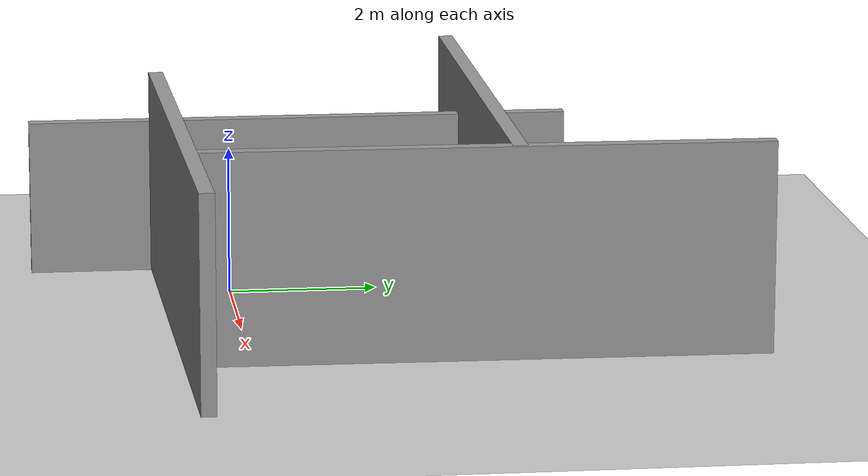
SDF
<sdf version="1.4">
 <world name="default">
  <light name="sun" type="directional">
   <pose>0 0 10 0 -0 0</pose>
   <diffuse>0.8 0.8 0.8 1</diffuse>
   <specular>0.2 0.2 0.2 1</specular>
   <attenuation>
    <range>1000</range>
    <constant>0.9</constant>
    <linear>0.01</linear>
    <quadratic>0.001</quadratic>
   </attenuation>
   <direction>-0.5 0.1 -0.9</direction>
  </light>
  <model name="ground_plane">
   <static>1</static>
   <link name="link">
    <collision name="collision">
     <geometry><plane><normal>0 0 1</normal><size>100 100</size></plane></geometry>
     <surface><friction><ode><mu>100</mu><mu2>50</mu2></ode></friction></surface>
    </collision>
    <visual name="visual">
     <cast_shadows>0</cast_shadows>
     <geometry><plane><normal>0 0 1</normal><size>100 100</size></plane></geometry>
     <material>
      <script><uri>file://media/materials/scripts/gazebo.material</uri><name>Gazebo/Grey</name></script>
     </material>
    </visual>
    <velocity_decay><linear>0</linear><angular>0</angular></velocity_decay>
   </link>
  </model>
  <physics type="ode">
   <max_step_size>0.001</max_step_size>
   <real_time_factor>1</real_time_factor>
   <real_time_update_rate>1000</real_time_update_rate>
   <gravity>0 0 -9.8</gravity>
  </physics>
  <scene><ambient>0.4 0.4 0.4 1</ambient><background>0.7 0.7 0.7 1</background><shadows>1</shadows></scene>
  <spherical_coordinates>
   <surface_model>EARTH_WGS84</surface_model>
   <latitude_deg>0</latitude_deg>
   <longitude_deg>0</longitude_deg>
   <elevation>0</elevation>
   <heading_deg>0</heading_deg>
  </spherical_coordinates>
  <model name="grey_wall">
   <static>1</static>
   <link name="link">
    <pose>0 0 1.4 0 -0 0</pose>
    <collision name="collision"><geometry><box><size>7.5 0.2 2.8</size></box></geometry></collision>
    <visual name="visual">
     <cast_shadows>0</cast_shadows>
     <geometry><box><size>7.5 0.2 2.8</size></box></geometry>
     <material>
      <script>
       <uri>model://grey_wall/materials/scripts_the_last_supper</uri>
       <uri>model://grey_wall/materials/textures</uri>
       <name>vrc/grey_wall_The_Last_Supper</name>
      </script>
     </material>
    </visual>
    <velocity_decay><linear>0</linear><angular>0</angular></velocity_decay>
   </link>
   <pose>-1.50089 1.08069 -0.690167 0 -0 1.56948</pose>
  </model>
  <model name="grey_wall_0">
   <static>1</static>
   <link name="link">
    <pose>0 0 1.4 0 -0 0</pose>
    <collision name="collision"><geometry><box><size>7.5 0.2 2.8</size></box></geometry></collision>
    <visual name="visual">
     <cast_shadows>0</cast_shadows>
     <geometry><box><size>7.5 0.2 2.8</size></box></geometry>
     <material>
      <script>
       <uri>model://grey_wall/materials/scripts_Village_Street</uri>
       <uri>model://grey_wall/materials/textures</uri>
       <name>vrc/grey_wall_Village_Street</name>
      </script>
     </material>
    </visual>
    <velocity_decay><linear>0</linear><angular>0</angular></velocity_decay>
   </link>
   <pose>3.81178 2.98838 0 0 0 -1.58944</pose>
  </model>
  <model name="grey_wall_1">
   <static>1</static>
   <link name="link">
    <pose>0 0 1.4 0 -0 0</pose>
    <collision name="collision"><geometry><box><size>7.5 0.2 2.8</size></box></geometry></collision>
    <visual name="visual">
     <cast_shadows>0</cast_shadows>
     <geometry><box><size>7.5 0.2 2.8</size></box></geometry>
     <material>
      <script>
       <uri>model://grey_wall/materials/scripts_women_of_algiers</uri>
       <uri>model://grey_wall/materials/textures</uri>
       <name>vrc/grey_wall_women_of_algiers</name>
      </script>
     </material>
    </visual>
    <velocity_decay><linear>0</linear><angular>0</angular></velocity_decay>
   </link>
   <pose>2.344 -0.808754 0 0 -0 0.025222</pose>
  </model>
  <model name="grey_wall_2">
   <static>1</static>
   <link name="link">
    <pose>0 0 1.4 0 -0 0</pose>
    <collision name="collision"><geometry><box><size>7.5 0.2 2.8</size></box></geometry></collision>
    <visual name="visual">
     <cast_shadows>0</cast_shadows>
     <geometry><box><size>7.5 0.2 2.8</size></box></geometry>
     <material>
      <script>
       <uri>model://grey_wall/materials/scripts</uri>
       <uri>model://grey_wall/materials/textures</uri>
       <name>vrc/grey_wall</name>
      </script>
     </material>
    </visual>
    <velocity_decay><linear>0</linear><angular>0</angular></velocity_decay>
   </link>
   <pose>0.114584 3.43373 0 0 -0 0</pose>
  </model>
 </world>
</sdf>
